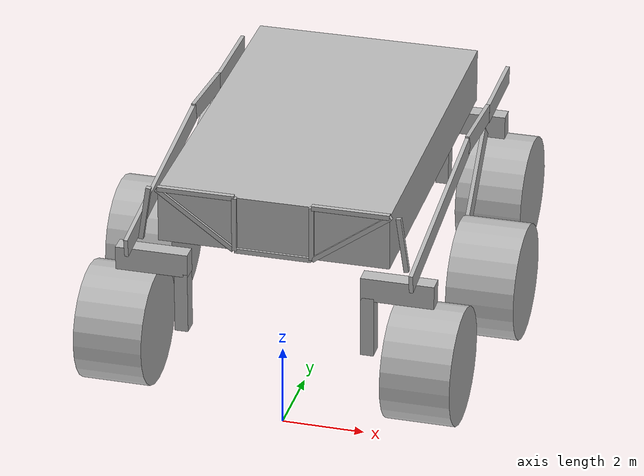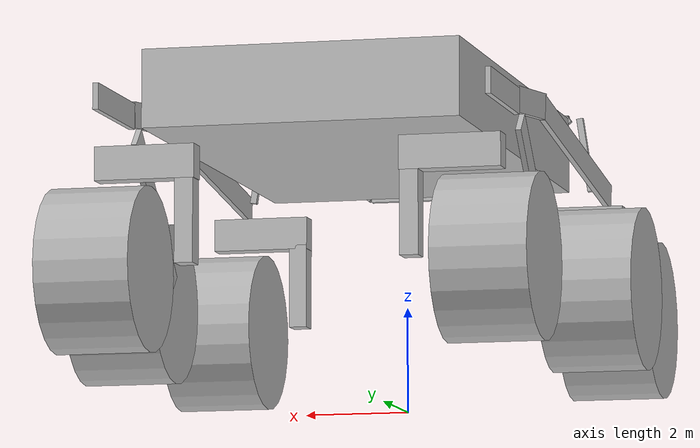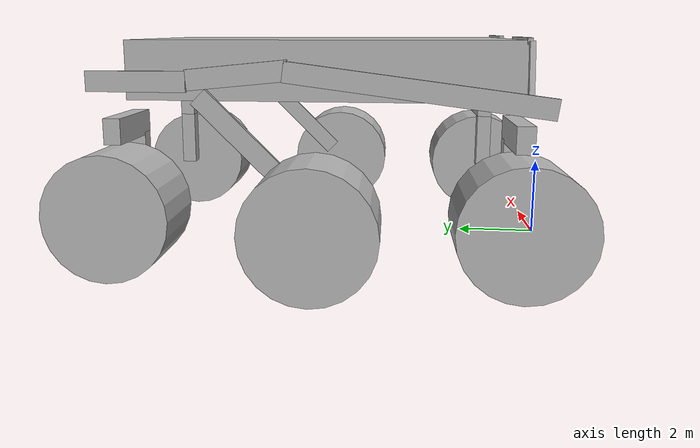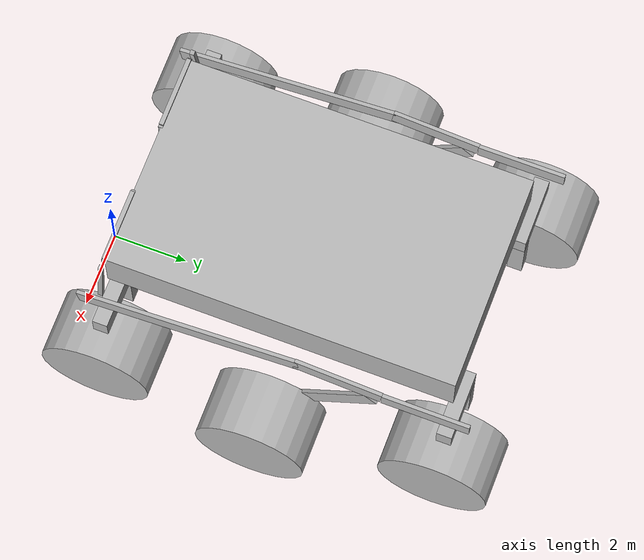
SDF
<?xml version='1.0'?>
<sdf version='1.4'>
	<model name="Rover">
		<static>0</static>

		<!-- Chassis -->
		<link name='chassis'>
			<pose>-0.5 5.6 4.66 0 0 0</pose>
			<collision name='chassis_coll'>
				<geometry>
					<box>
						<size>5.7 9.19 1.40</size>
					</box>
				</geometry>
			</collision>

			<visual name='chassis_vis'>
				<geometry>
					<box>
						<size>5.7 9.19 1.40</size>
					</box>
				</geometry>
			</visual>
		</link>

		<!-- Left Rocker 1 -->
		<link name='left_rocker_1'>
			<pose>-4.0 3.42 4.3 0.13 0 0</pose>
			<collision name='lrock_link_1_coll'>
				<geometry>
					<box>
						<size>0.1 5.94 0.47</size>
					</box>
				</geometry>
			</collision>

			<visual name='lrock_link_1_vis'>
				<geometry>
					<box>
						<size>0.1 5.94 0.47</size>
					</box>
				</geometry>
			</visual>
		</link>

		<!-- Left Rocker 2 -->
		<link name='left_rocker_2'>
			<pose>-4.0 7.39 4.6 -0.1 0 0</pose>
			<collision name='lrock_link_2_coll'>
				<geometry>
					<box>
						<size>0.1 2.3 0.47</size>
					</box>
				</geometry>
			</collision>

			<visual name='lrock_link_2_vis'>
				<geometry>
					<box>
						<size>0.1 2.3 0.47</size>
					</box>
				</geometry>
			</visual>
		</link>

		<!-- Left Rocker Joint -->
		<joint type="revolute" name="left_rocker_hinge">
			<pose>0 -1.25 0 0 0 0</pose>
			<child>left_rocker_2</child>
			<parent>left_rocker_1</parent>
			<axis>
				<xyz>0 1 0</xyz>
				<limit>
					<upper>0</upper>
					<lower>0</lower>
				</limit>
			</axis>
		</joint>

		<!-- Left Rocker-Chassis Joint -->
		<joint type="revolute" name="left_rocker_chassis_joint">
			<pose>0 -1.25 0 0 0 0</pose>
			<child>left_rocker_2</child>
			<parent>chassis</parent>
			<axis>
				<xyz>1 0 0</xyz>
			</axis>
		</joint>

		<!-- Left Rocker-Wheel Joint -->
		<joint type="revolute" name="left_rocker_wheel_joint">
			<pose>0 -1.25 0 0 0 0</pose>
			<child>left_rocker_2</child>
			<parent>rl_link_1</parent>
			<axis>
				<xyz>0 0 1</xyz>
			</axis>
		</joint>

		<!-- Left Bogie 1 -->
		<link name='left_bogie_1'>
			<pose>-4.0 9.69 4.45 0 0 0</pose>
			<collision name='lbog_link_1_coll'>
				<geometry>
					<box>
						<size>0.1 2.3 0.47</size>
					</box>
				</geometry>
			</collision>

			<visual name='lbog_link_1_vis'>
				<geometry>
					<box>
						<size>0.1 2.3 0.47</size>
					</box>
				</geometry>
			</visual>
		</link>

		<!-- Left Bogie 2 -->
		<link name='left_bogie_2'>
			<pose>-4.0 7.08 2.95 0.78 0 0</pose>
			<collision name='lbog_link_2_coll'>
				<geometry>
					<box>
						<size>0.1 3.35 0.47</size>
					</box>
				</geometry>
			</collision>

			<visual name='lbog_link_2_vis'>
				<geometry>
					<box>
						<size>0.1 3.35 0.47</size>
					</box>
				</geometry>
			</visual>
		</link>

		<!-- Link Joint -->
		<joint type="revolute" name="left_bogie_hinge">
			<pose>0 0 -1.67 0 0 0</pose>
			<child>left_bogie_1</child>
			<parent>left_bogie_2</parent>
			<axis>
				<xyz>0 1 0</xyz>
				<limit>
					<upper>0</upper>
					<lower>0</lower>
				</limit>
			</axis>
		</joint>

		<!-- Front Left Bogie-Wheel Joint -->
		<joint type="revolute" name="fl_bogie_wheel_joint">
			<pose>0 0.5 0 0 0 0</pose>
			<child>left_bogie_1</child>
			<parent>fl_link_1</parent>
			<axis>
				<xyz>0 0 1</xyz>
				<dynamics>
					<friction>2000</friction>
				</dynamics>
			</axis>
		</joint>

		<!-- Left Rocker-Bogie Joint -->
		<joint type="revolute" name="left_rocker_bogie_joint">
			<pose>0 0.5 0 0 0 0</pose>
			<child>left_bogie_1</child>
			<parent>left_rocker_2</parent>
			<axis>
				<xyz>1 0 0</xyz>
			</axis>
		</joint>

		<!-- FL Wheel Link 1 -->
		<link name='fl_link_1'>
			<pose>-3.23 10.25 3.32 0 0 0</pose>
			<collision name='fl_link_1_coll'>
				<geometry>
					<box>
						<size>1.8 0.4 0.6</size>
					</box>
				</geometry>
			</collision>

			<visual name='fl_link_1_vis'>
				<geometry>
					<box>
						<size>1.8 0.4 0.6</size>
					</box>
				</geometry>
			</visual>
		</link>

		<!-- FL Wheel Link 2 -->
		<link name='fl_link_2'>
			<pose>-2.51 10.25 2.31 0 0 0</pose>
			<collision name='fl_link_2_coll'>
				<geometry>
					<box>
						<size>0.33 0.4 1.56</size>
					</box>
				</geometry>
			</collision>

			<visual name='fl_link_2_vis'>
				<geometry>
					<box>
						<size>0.33 0.4 1.56</size>
					</box>
				</geometry>
			</visual>
		</link>

		<!-- Link Joint -->
		<joint type="revolute" name="fl_wheel_hinge">
			<pose>0 0 0.78 0 0 0</pose>
			<child>fl_link_2</child>
			<parent>fl_link_1</parent>
			<axis>
				<xyz>0 1 0</xyz>
				<limit>
					<upper>0</upper>
					<lower>0</lower>
				</limit>
			</axis>
		</joint>

		<!-- FL Wheel -->
		<link name="front_left_wheel">
			<pose>-4.0 10.25 1.46 0 1.5707 0</pose>
			<collision name="fl_wheel_coll">
				<geometry>
					<cylinder>
						<radius>1.46</radius>
						<length>1.70</length>
					</cylinder>
				</geometry>
			</collision>
			<visual name="fl_wheel_vis">
				<geometry>
					<cylinder>
						<radius>1.46</radius>
						<length>1.70</length>
					</cylinder>
				</geometry>
			</visual>
		</link>

		<!-- ML Wheel -->
		<link name="mid_left_wheel">
			<pose>-4.87 5.63 1.46 0 1.5707 0</pose>
			<collision name="ml_wheel_coll">
				<geometry>
					<cylinder>
						<radius>1.46</radius>
						<length>1.70</length>
					</cylinder>
				</geometry>
			</collision>
			<visual name="ml_wheel_vis">
				<geometry>
					<cylinder>
						<radius>1.46</radius>
						<length>1.70</length>
					</cylinder>
				</geometry>
			</visual>
		</link>

		<!-- RL Wheel Link 1 -->
		<link name='rl_link_1'>
			<pose>-3.54 1.2 3.32 0 0 0</pose>
			<collision name='rl_link_1_coll'>
				<geometry>
					<box>
						<size>1.8 0.4 0.6</size>
					</box>
				</geometry>
			</collision>

			<visual name='rl_link_1_vis'>
				<geometry>
					<box>
						<size>1.8 0.4 0.6</size>
					</box>
				</geometry>
			</visual>
		</link>

		<!-- RL Wheel Link 2 -->
		<link name='rl_link_2'>
			<pose>-2.81 1.2 2.31 0 0 0</pose>
			<collision name='rl_link_2_coll'>
				<geometry>
					<box>
						<size>0.33 0.4 1.56</size>
					</box>
				</geometry>
			</collision>

			<visual name='rl_link_2_vis'>
				<geometry>
					<box>
						<size>0.33 0.4 1.56</size>
					</box>
				</geometry>
			</visual>
		</link>

		<!-- Link Joint -->
		<joint type="revolute" name="rl_wheel_hinge">
			<pose>0 0 0.78 0 0 0</pose>
			<child>rl_link_2</child>
			<parent>rl_link_1</parent>
			<axis>
				<xyz>0 1 0</xyz>
				<limit>
					<upper>0</upper>
					<lower>0</lower>
				</limit>
			</axis>
		</joint>

		<!-- RL Wheel -->
		<link name="rear_left_wheel">
			<pose>-4.31 1.2 1.46 0 1.5707 0</pose>
			<collision name="rl_wheel_coll">
				<geometry>
					<cylinder>
						<radius>1.46</radius>
						<length>1.70</length>
					</cylinder>
				</geometry>
			</collision>
			<visual name="rl_wheel_vis">
				<geometry>
					<cylinder>
						<radius>1.46</radius>
						<length>1.70</length>
					</cylinder>
				</geometry>
			</visual>
		</link>

		<!-- FR Wheel Link 1 -->
		<link name='fr_link_1'>
			<pose>2.23 10.25 3.32 0 0 0</pose>
			<collision name='fr_link_1_coll'>
				<geometry>
					<box>
						<size>1.8 0.4 0.6</size>
					</box>
					<box>
						<size>0.33 0.4 1.56</size>
					</box>
				</geometry>
			</collision>

			<visual name='fr_link_1_vis'>
				<geometry>
					<box>
						<size>1.8 0.4 0.6</size>
					</box>
					<box>
						<size>0.33 0.4 1.56</size>
					</box>
				</geometry>
			</visual>
		</link>

		<!-- FR Wheel Link 2 -->
		<link name='fr_link_2'>
			<pose>1.51 10.25 2.31 0 0 0</pose>
			<collision name='fr_link_2_coll'>
				<geometry>
					<box>
						<size>0.33 0.4 1.56</size>
					</box>
				</geometry>
			</collision>

			<visual name='fr_link_2_vis'>
				<geometry>
					<box>
						<size>0.33 0.4 1.56</size>
					</box>
				</geometry>
			</visual>
		</link>

		<!-- Link Joint -->
		<joint type="revolute" name="fr_wheel_hinge">
			<pose>0 0 0.78 0 0 0</pose>
			<child>fr_link_2</child>
			<parent>fr_link_1</parent>
			<axis>
				<xyz>0 1 0</xyz>
				<limit>
					<upper>0</upper>
					<lower>0</lower>
				</limit>
			</axis>
		</joint>

		<!-- FR Wheel -->
		<link name="front_right_wheel">
			<pose>3.0 10.25 1.46 0 1.5707 0</pose>
			<collision name="fr_wheel_coll">
				<geometry>
					<cylinder>
						<radius>1.46</radius>
						<length>1.70</length>
					</cylinder>
				</geometry>
			</collision>
			<visual name="fr_wheel_vis">
				<geometry>
					<cylinder>
						<radius>1.46</radius>
						<length>1.70</length>
					</cylinder>
				</geometry>
			</visual>
		</link>

		<!-- MR Wheel -->
		<link name="mid_right_wheel">
			<pose>3.84 5.63 1.46 0 1.5707 0</pose>
			<collision name="mr_wheel_coll">
				<geometry>
					<cylinder>
						<radius>1.46</radius>
						<length>1.70</length>
					</cylinder>
				</geometry>
			</collision>
			<visual name="mr_wheel_vis">
				<geometry>
					<cylinder>
						<radius>1.46</radius>
						<length>1.70</length>
					</cylinder>
				</geometry>
			</visual>
		</link>

		<!-- RR Wheel Link 1 -->
		<link name='rr_link_1'>
			<pose>2.54 1.2 3.32 0 0 0</pose>
			<collision name='rr_link_1_coll'>
				<geometry>
					<box>
						<size>1.8 0.4 0.6</size>
					</box>
					<box>
						<size>0.33 0.4 1.56</size>
					</box>
				</geometry>
			</collision>

			<visual name='rr_link_1_vis'>
				<geometry>
					<box>
						<size>1.8 0.4 0.6</size>
					</box>
					<box>
						<size>0.33 0.4 1.56</size>
					</box>
				</geometry>
			</visual>
		</link>

		<!-- RR Wheel Link 2 -->
		<link name='rr_link_2'>
			<pose>1.81 1.2 2.31 0 0 0</pose>
			<collision name='rr_link_2_coll'>
				<geometry>
					<box>
						<size>0.33 0.4 1.56</size>
					</box>
				</geometry>
			</collision>

			<visual name='rr_link_2_vis'>
				<geometry>
					<box>
						<size>0.33 0.4 1.56</size>
					</box>
				</geometry>
			</visual>
		</link>

		<!-- Link Joint -->
		<joint type="revolute" name="rr_wheel_hinge">
			<pose>0 0 0.78 0 0 0</pose>
			<child>rr_link_2</child>
			<parent>rr_link_1</parent>
			<axis>
				<xyz>0 1 0</xyz>
				<limit>
					<upper>0</upper>
					<lower>0</lower>
				</limit>
			</axis>
		</joint>

		<!-- RR Wheel -->
		<link name="rear_right_wheel">
			<pose>3.28 1.2 1.46 0 1.5707 0</pose>
			<collision name="rr_wheel_coll">
				<geometry>
					<cylinder>
						<radius>1.46</radius>
						<length>1.70</length>
					</cylinder>
				</geometry>
			</collision>
			<visual name="rr_wheel_vis">
				<geometry>
					<cylinder>
						<radius>1.46</radius>
						<length>1.70</length>
					</cylinder>
				</geometry>
			</visual>
		</link>

		<!-- Right Rocker 1 -->
		<link name='right_rocker_1'>
			<pose>3.0 3.42 4.3 0.13 0 0</pose>
			<collision name='rrock_link_1_coll'>
				<geometry>
					<box>
						<size>0.1 5.94 0.47</size>
					</box>
				</geometry>
			</collision>

			<visual name='rrock_link_1_vis'>
				<geometry>
					<box>
						<size>0.1 5.94 0.47</size>
					</box>
				</geometry>
			</visual>
		</link>

		<!-- Right Rocker 2 -->
		<link name='right_rocker_2'>
			<pose>3.0 7.39 4.6 -0.1 0 0</pose>
			<collision name='rrock_link_2_coll'>
				<geometry>
					<box>
						<size>0.1 2.3 0.47</size>
					</box>
				</geometry>
			</collision>

			<visual name='rrock_link_2_vis'>
				<geometry>
					<box>
						<size>0.1 2.3 0.47</size>
					</box>
				</geometry>
			</visual>
		</link>

		<!-- Right Rocker Joint -->
		<joint type="revolute" name="right_rocker_hinge">
			<pose>0 -1.25 0 0 0 0</pose>
			<child>right_rocker_2</child>
			<parent>right_rocker_1</parent>
			<axis>
				<xyz>0 1 0</xyz>
				<limit>
					<upper>0</upper>
					<lower>0</lower>
				</limit>
			</axis>
		</joint>

		<!-- Right Rocker-Chassis Joint -->
		<joint type="revolute" name="right_rocker_chassis_joint">
			<pose>0 -1.25 0 0 0 0</pose>
			<child>right_rocker_2</child>
			<parent>chassis</parent>
			<axis>
				<xyz>1 0 0</xyz>
			</axis>
		</joint>

		<!-- Right Rocker-Wheel Joint -->
		<joint type="revolute" name="right_rocker_wheel_joint">
			<pose>0 -1.25 0 0 0 0</pose>
			<child>right_rocker_2</child>
			<parent>rr_link_1</parent>
			<axis>
				<xyz>0 0 1</xyz>
			</axis>
		</joint>

		<!-- Right Bogie 1 -->
		<link name='right_bogie_1'>
			<pose>3.0 9.69 4.45 0 0 0</pose>
			<collision name='rbog_link_1_coll'>
				<geometry>
					<box>
						<size>0.1 2.3 0.47</size>
					</box>
				</geometry>
			</collision>

			<visual name='rbog_link_1_vis'>
				<geometry>
					<box>
						<size>0.1 2.3 0.47</size>
					</box>
				</geometry>
			</visual>
		</link>

		<!-- Right Bogie 2 -->
		<link name='right_bogie_2'>
			<pose>3.0 7.08 2.95 0.78 0 0</pose>
			<collision name='rbog_link_2_coll'>
				<geometry>
					<box>
						<size>0.1 3.35 0.47</size>
					</box>
				</geometry>
			</collision>

			<visual name='rbog_link_2_vis'>
				<geometry>
					<box>
						<size>0.1 3.35 0.47</size>
					</box>
				</geometry>
			</visual>
		</link>

		<!-- Link Joint -->
		<joint type="revolute" name="right_bogie_hinge">
			<pose>0 0 -1.67 0 0 0</pose>
			<child>right_bogie_1</child>
			<parent>right_bogie_2</parent>
			<axis>
				<xyz>0 1 0</xyz>
				<limit>
					<upper>0</upper>
					<lower>0</lower>
				</limit>
			</axis>
		</joint>

		<!-- Right Rocker-Bogie Joint -->
		<joint type="revolute" name="right_rocker_bogie_joint">
			<pose>0 0.5 0 0 0 0</pose>
			<child>right_bogie_1</child>
			<parent>right_rocker_2</parent>
			<axis>
				<xyz>1 0 0</xyz>
			</axis>
		</joint>

		<!-- Front Right Bogie-Wheel Joint -->
		<joint type="revolute" name="fr_bogie_wheel_joint">
			<pose>0 0.5 0 0 0 0</pose>
			<child>right_bogie_1</child>
			<parent>fr_link_1</parent>
			<axis>
				<xyz>0 0 1</xyz>
			</axis>
		</joint>

		<joint type="revolute" name="fl_wheel_joint">
			<pose>0 0 0 0 1.5707 0</pose>
			<child>front_left_wheel</child>
			<parent>fl_link_2</parent>
			<axis>
				<xyz>1 0 0</xyz>
			</axis>
		</joint>

		<joint type="revolute" name="ml_wheel_joint">
			<pose>0 0 0 0 1.5707 0</pose>
			<child>mid_left_wheel</child>
			<parent>left_bogie_2</parent>
			<axis>
				<xyz>1 0 0</xyz>
			</axis>
		</joint>

		<joint type="revolute" name="rl_wheel_joint">
			<pose>0 0 0 0 1.5707 0</pose>
			<child>rear_left_wheel</child>
			<parent>rl_link_2</parent>
			<axis>
				<xyz>1 0 0</xyz>
			</axis>
		</joint>

		<joint type="revolute" name="fr_wheel_joint">
			<pose>0 0 0 0 1.5707 0</pose>
			<child>front_right_wheel</child>
			<parent>fr_link_2</parent>
			<axis>
				<xyz>1 0 0</xyz>
			</axis>
		</joint>

		<joint type="revolute" name="mr_wheel_joint">
			<pose>0 0 0 0 1.5707 0</pose>
			<child>mid_right_wheel</child>
			<parent>right_bogie_2</parent>
			<axis>
				<xyz>1 0 0</xyz>
			</axis>
		</joint>

		<joint type="revolute" name="rr_wheel_joint">
			<pose>0 0 0 0 1.5707 0</pose>
			<child>rear_right_wheel</child>
			<parent>rr_link_2</parent>
			<axis>
				<xyz>1 0 0</xyz>
			</axis>
		</joint>

		<!-- Left Differential Triangle 1 -->
		<link name='left_diff_triangle_1'>
			<pose>-2.4 1.0 5.36 0 0 0</pose>
			<collision name='ldiff_link_1_coll'>
				<geometry>
					<box>
						<size>1.9 0.12 0.12</size>
					</box>
				</geometry>
			</collision>

			<visual name='ldiff_link_1_vis'>
				<geometry>
					<box>
						<size>1.9 0.12 0.12</size>
					</box>
				</geometry>
			</visual>
		</link>

		<!-- Right Differential Triangle 1 -->
		<link name='right_diff_triangle_1'>
			<pose>1.4 1.0 5.36 0 0 0</pose>
			<collision name='rdiff_link_1_coll'>
				<geometry>
					<box>
						<size>1.9 0.12 0.12</size>
					</box>
				</geometry>
			</collision>

			<visual name='rdiff_link_1_vis'>
				<geometry>
					<box>
						<size>1.9 0.12 0.12</size>
					</box>
				</geometry>
			</visual>
		</link>

		<joint type="revolute" name="right_diff_chassis_joint">
			<pose>-0.95 0 0 0 1.5707 0</pose>
			<child>right_diff_triangle_1</child>
			<parent>chassis</parent>
			<axis>
				<xyz>0 1 0</xyz>
			</axis>
		</joint>

		<joint type="revolute" name="left_diff_chassis_joint">
			<pose>0.95 0 0 0 1.5707 0</pose>
			<child>left_diff_triangle_1</child>
			<parent>chassis</parent>
			<axis>
				<xyz>0 1 0</xyz>
			</axis>
		</joint>

		<!-- Left Differential Triangle 2 -->
		<link name='left_diff_triangle_2'>
			<pose>-1.45 1.0 4.66 0 0 0</pose>
			<collision name='ldiff_link_2_coll'>
				<geometry>
					<box>
						<size>0.12 0.12 1.4</size>
					</box>
				</geometry>
			</collision>

			<visual name='ldiff_link_2_vis'>
				<geometry>
					<box>
						<size>0.12 0.12 1.4</size>
					</box>
				</geometry>
			</visual>
		</link>

		<!-- Right Differential Triangle 2 -->
		<link name='right_diff_triangle_2'>
			<pose>0.45 1.0 4.66 0 0 0</pose>
			<collision name='rdiff_link_2_coll'>
				<geometry>
					<box>
						<size>0.12 0.12 1.4</size>
					</box>
				</geometry>
			</collision>

			<visual name='rdiff_link_2_vis'>
				<geometry>
					<box>
						<size>0.12 0.12 1.4</size>
					</box>
				</geometry>
			</visual>
		</link>

		<joint type="revolute" name="right_diff_right_joint">
			<pose>0 0 0.7 0 1.5707 0</pose>
			<child>right_diff_triangle_2</child>
			<parent>right_diff_triangle_1</parent>
			<axis>
				<xyz>0 1 0</xyz>
				<limit>
					<upper>0</upper>
					<lower>0</lower>
				</limit>
			</axis>
		</joint>

		<joint type="revolute" name="left_diff_right_joint">
			<pose>0 0 0.7 0 1.5707 0</pose>
			<child>left_diff_triangle_2</child>
			<parent>left_diff_triangle_1</parent>
			<axis>
				<xyz>0 1 0</xyz>
				<limit>
					<upper>0</upper>
					<lower>0</lower>
				</limit>
			</axis>
		</joint>

		<!-- Left Differential Triangle 3 -->
		<link name='left_diff_triangle_3'>
			<pose>-2.42 1.0 4.66 0 0.63 0</pose>
			<collision name='ldiff_link_3_coll'>
				<geometry>
					<box>
						<size>2.36 0.12 0.12</size>
					</box>
				</geometry>
			</collision>

			<visual name='ldiff_link_3_vis'>
				<geometry>
					<box>
						<size>2.36 0.12 0.12</size>
					</box>
				</geometry>
			</visual>
		</link>

		<!-- Right Differential Triangle 3 -->
		<link name='right_diff_triangle_3'>
			<pose>1.42 1.0 4.66 0 -0.63 0</pose>
			<collision name='rdiff_link_3_coll'>
				<geometry>
					<box>
						<size>2.36 0.12 0.12</size>
					</box>
				</geometry>
			</collision>

			<visual name='rdiff_link_3_vis'>
				<geometry>
					<box>
						<size>2.36 0.12 0.12</size>
					</box>
				</geometry>
			</visual>
		</link>

		<joint type="revolute" name="right_diff_hor_joint">
			<pose>0.95 0 0 0 1.5707 0</pose>
			<child>right_diff_triangle_1</child>
			<parent>right_diff_triangle_3</parent>
			<axis>
				<xyz>0 1 0</xyz>
				<limit>
					<upper>0</upper>
					<lower>0</lower>
				</limit>
			</axis>
		</joint>

		<joint type="revolute" name="left_diff_hor_joint">
			<pose>-0.95 0 0 0 1.5707 0</pose>
			<child>left_diff_triangle_1</child>
			<parent>left_diff_triangle_3</parent>
			<axis>
				<xyz>0 1 0</xyz>
				<limit>
					<upper>0</upper>
					<lower>0</lower>
				</limit>
			</axis>
		</joint>

		<joint type="revolute" name="right_diff_vert_joint">
			<pose>0 0 -0.7 0 1.5707 0</pose>
			<child>right_diff_triangle_2</child>
			<parent>right_diff_triangle_3</parent>
			<axis>
				<xyz>0 1 0</xyz>
				<limit>
					<upper>0</upper>
					<lower>0</lower>
				</limit>
			</axis>
		</joint>

		<joint type="revolute" name="left_diff_vert_joint">
			<pose>0 0 -0.7 0 1.5707 0</pose>
			<child>left_diff_triangle_2</child>
			<parent>left_diff_triangle_3</parent>
			<axis>
				<xyz>0 1 0</xyz>
				<limit>
					<upper>0</upper>
					<lower>0</lower>
				</limit>
			</axis>
		</joint>

		<!-- Differential Center -->
		<link name='diff_center'>
			<pose>-0.5 1.0 3.96 0 0 0</pose>
			<collision name='diff_center_coll'>
				<geometry>
					<box>
						<size>1.9 0.12 0.12</size>
					</box>
				</geometry>
			</collision>

			<visual name='diff_center_vis'>
				<geometry>
					<box>
						<size>1.9 0.12 0.12</size>
					</box>
				</geometry>
			</visual>
		</link>

		<joint type="revolute" name="right_diff_cent_joint">
			<pose>0.95 0 0 0 0 0</pose>
			<child>diff_center</child>
			<parent>right_diff_triangle_2</parent>
			<axis>
				<xyz>0 1 0</xyz>
				<limit>
					<upper>0</upper>
					<lower>0</lower>
				</limit>
			</axis>
		</joint>

		<joint type="revolute" name="left_diff_cent_joint">
			<pose>0.95 0 0 0 0 0</pose>
			<child>diff_center</child>
			<parent>left_diff_triangle_2</parent>
			<axis>
				<xyz>0 1 0</xyz>
				<limit>
					<upper>0</upper>
					<lower>0</lower>
				</limit>
			</axis>
		</joint>

		<!-- Left Differential Joint Link -->
		<link name='left_diff_joint_link'>
			<pose>-3.67 1.0 4.66 0 0.15 0</pose>
			<collision name='ldiff_link_coll'>
				<geometry>
					<box>
						<size>0.12 0.12 1.4</size>
					</box>
				</geometry>
			</collision>

			<visual name='ldiff_link_vis'>
				<geometry>
					<box>
						<size>0.12 0.12 1.4</size>
					</box>
				</geometry>
			</visual>
		</link>

		<!-- Right Differential Joint Link -->
		<link name='right_diff_joint_link'>
			<pose>2.67 1.0 4.66 0 -0.15 0</pose>
			<collision name='rdiff_link_coll'>
				<geometry>
					<box>
						<size>0.12 0.12 1.4</size>
					</box>
				</geometry>
			</collision>

			<visual name='rdiff_link_vis'>
				<geometry>
					<box>
						<size>0.12 0.12 1.4</size>
					</box>
				</geometry>
			</visual>
		</link>

		<!-- Ball Joints -->
		<joint type="revolute2" name="right_diff_link_rocker_joint">
			<pose>0.12 0 -0.69 0 0 0</pose>
			<child>right_diff_joint_link</child>
			<parent>right_rocker_1</parent>
			<axis>
				<xyz>1 0 0</xyz>
			</axis>
			<axis>
				<xyz>0 1 0</xyz>
			</axis>
		</joint>

		<joint type="revolute2" name="right_diff_link_diff_joint">
			<pose>-0.12 0 0.69 0 0 0</pose>
			<child>right_diff_joint_link</child>
			<parent>right_diff_triangle_1</parent>
			<axis>
				<xyz>1 0 0</xyz>
			</axis>
			<axis>
				<xyz>0 1 0</xyz>
			</axis>
		</joint>

		<joint type="revolute2" name="left_diff_link_rocker_joint">
			<pose>-0.12 20 -0.69 0 0 0</pose>
			<child>left_diff_joint_link</child>
			<parent>left_rocker_1</parent>
			<axis>
				<xyz>1 0 0</xyz>
			</axis>
			<axis>
				<xyz>0 1 0</xyz>
			</axis>
		</joint>

		<joint type="revolute2" name="left_diff_link_diff_joint">
			<pose>0.12 0 0.69 0 0 0</pose>
			<child>left_diff_joint_link</child>
			<parent>left_diff_triangle_1</parent>
			<axis>
				<xyz>1 0 0</xyz>
			</axis>
			<axis>
				<xyz>0 1 0</xyz>
			</axis>
		</joint>
	</model>
</sdf>
